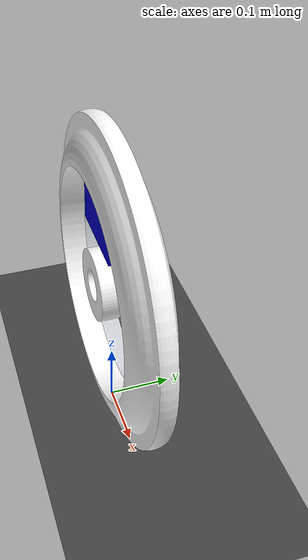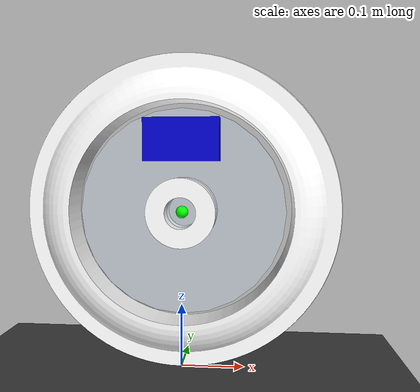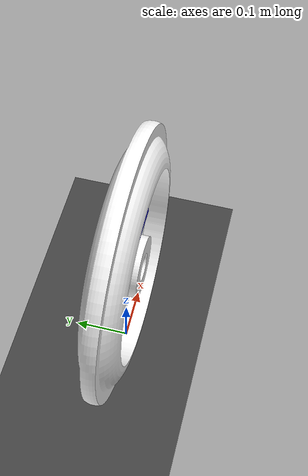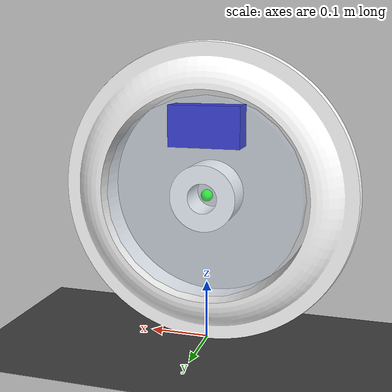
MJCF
<mujoco model="standing_wheel_push_over">
  <compiler angle="degree" coordinate="local" autolimits="true"/>

  <option timestep="0.0005" gravity="0 0 -9.81" integrator="RK4"
          iterations="200" viscosity="0.0005" />

  <default>
    <geom condim="6"
          friction="1 0.01 0.006"
          solref="0.001 1"
          solimp="0.95 0.95 0.001"/>
  </default>

  <visual>
    <map znear="0.001" zfar="100"/>
    <rgba haze="0.7 0.8 1.0 1"/>
    <global offwidth="1920" offheight="1080"/>
  </visual>

  <asset>
    <material name="glass_material"
              rgba="0.8 0.9 1.0 0.3"
              specular="1.0"
              shininess="1.0"
              reflectance="0.6"/>

    <mesh name="wheel_mesh" file="meshes/out.stl" scale="0.001 0.001 0.001"/>
    <material name="matwheel" rgba="0.75 0.75 0.78 1" specular="0.2" shininess="0.3"/>

    <texture name="texplane" type="2d" builtin="checker" width="512" height="512"
             rgb1="0.2 0.2 0.2" rgb2="0.3 0.3 0.3"/>
    <material name="matplane" texture="texplane" texrepeat="4 4" reflectance="0.05"/>
  </asset>

  <worldbody>
    <light pos="2 2 2" dir="-1 -1 -1" diffuse="1.5 1.5 1.5"/>
    <light pos="-2 1 2" dir="1 -0.5 -1" diffuse="1.0 1.0 1.0"/>
    <camera name="cam_main"
        pos="4.0 -4.8 2.6"
        xyaxes="0.78 0.62 0  -0.22 0.28 0.93"
        fovy="60"/>

    <geom name="floor" type="plane" size="1000 200 0.1" material="matplane"
          condim="6" friction="1 0.01 0.006"/>

    <body name="wheel" pos="0 0 0.25">
      <joint name="root_x" type="slide" axis="1 0 0"/> <joint name="root_z" type="slide" axis="0 0 1"/> <joint name="root_y" type="hinge" axis="0 1 0"/>
      <inertial pos = "0 0 0" mass="3.06" diaginertia = " 0.04325388727 0.1045709321 0.07"/>

      <geom name="visual" type="mesh" mesh="wheel_mesh" material="matwheel"
            pos="-0.25 -0.035 -0.25" mass="0"  rgba="1 1 1 1"
            contype="0" conaffinity="0"/>

      <geom name="collision" type="cylinder" size="0.25 0.0125"
            pos="0 0 0" mass="0" euler="90 0 0"
            condim="6" friction="1 0.01 0.006"
            rgba="1 0 0 0" contype="1" conaffinity="1"/>

      <geom name="disk_left" type="cylinder" size="0.21 0.015"
        pos="0 -0.0175 0" mass="0" euler="90 0 0"
        rgba="0 0 0.8 0" contype="1" conaffinity="1"/>

      <body name="box_link" pos="0 0 0" euler="0 0 0">
        <joint name="box_hinge" type="hinge" axis="0 1 0" damping="0.306"/>

        <geom name="disk_right" type="cylinder" size="0.165 0.015"
        pos="0 0.0175 0" mass="0" euler="90 0 0" material="glass_material"
        contype="1" conaffinity="1"/>

        <geom name="block_geom" type="box" size="0.06 0.022 0.034"
        pos="0 0 0.115" mass="0.7" euler="0 0 0" rgba="0 0 0.8 1"
        contype="2" conaffinity="2"/>
       </body>

      <site name="top" pos="0 0 0" size="0.01" rgba="0 1 0 1"/>
    </body>
  </worldbody>

  <actuator>
    <motor name="main_motor" joint="box_hinge" gear="-1" ctrlrange="-150 150" ctrllimited="true"/>
  </actuator>

</mujoco>
